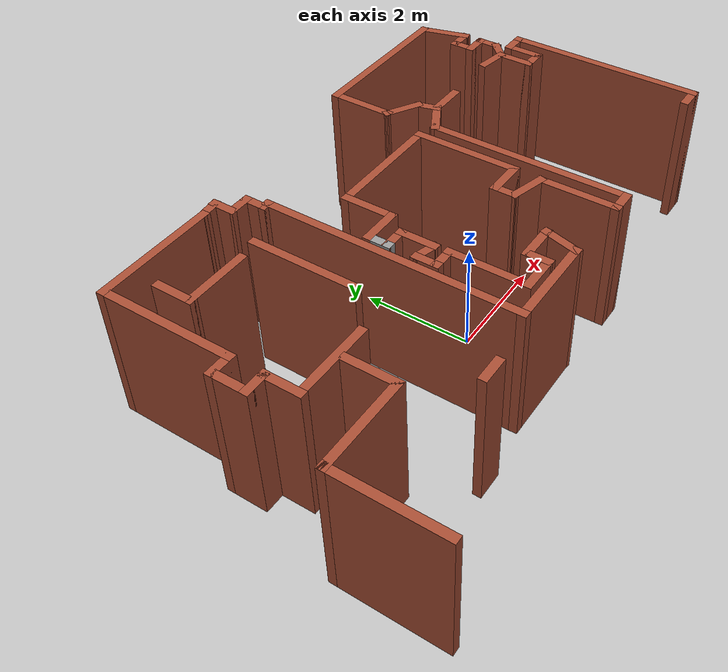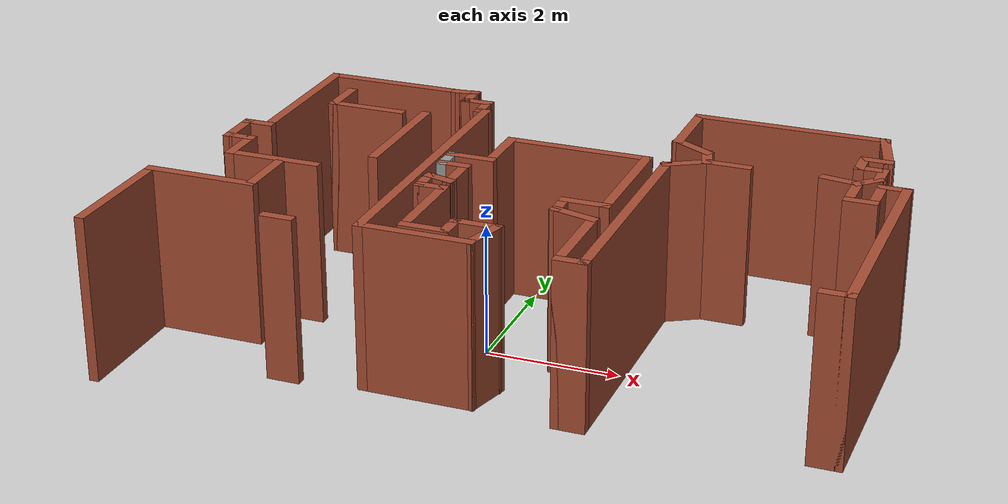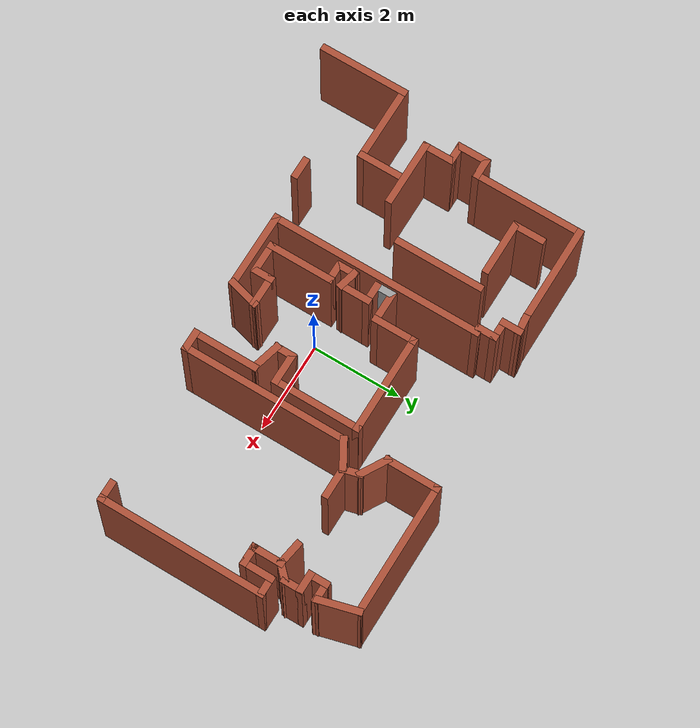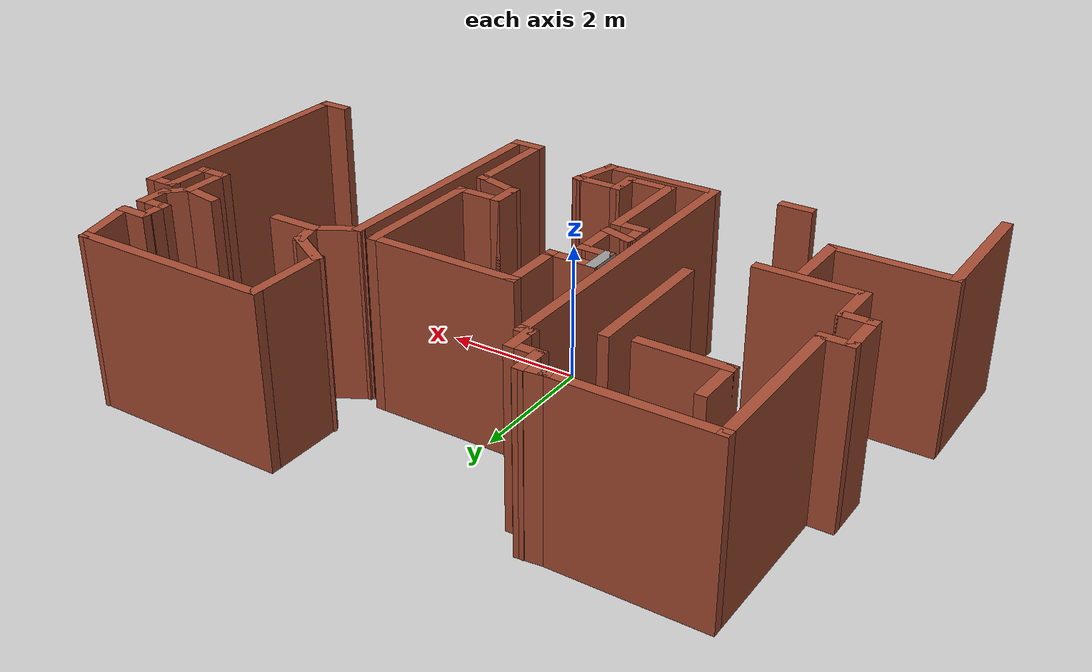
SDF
<sdf version="1.6">
 <model name="map_45">
  <pose>0.29683 -1.90359 0 0 -0 0</pose>
  <link name="Wall_0">
   <collision name="Wall_0_Collision">
    <geometry><box><size>2.25 0.15 2.5</size></box></geometry>
    <pose>0 0 1.25 0 -0 0</pose>
   </collision>
   <visual name="Wall_0_Visual">
    <pose>0 0 1.25 0 -0 0</pose>
    <geometry><box><size>2.25 0.15 2.5</size></box></geometry>
    <material>
     <script><uri>file://media/materials/scripts/gazebo.material</uri><name>Gazebo/Bricks</name></script>
     <ambient>1 1 1 1</ambient>
    </material>
    <meta><layer>0</layer></meta>
   </visual>
   <pose>-3.30096 5.5702 0 0 -0 3.14159</pose>
  </link>
  <link name="Wall_1">
   <collision name="Wall_1_Collision">
    <geometry><box><size>2.5 0.15 2.5</size></box></geometry>
    <pose>0 0 1.25 0 -0 0</pose>
   </collision>
   <visual name="Wall_1_Visual">
    <pose>0 0 1.25 0 -0 0</pose>
    <geometry><box><size>2.5 0.15 2.5</size></box></geometry>
    <material>
     <script><uri>file://media/materials/scripts/gazebo.material</uri><name>Gazebo/Bricks</name></script>
     <ambient>1 1 1 1</ambient>
    </material>
    <meta><layer>0</layer></meta>
   </visual>
   <pose>-4.35096 4.3952 0 0 -0 -1.5708</pose>
  </link>
  <link name="Wall_10">
   <collision name="Wall_10_Collision">
    <geometry><box><size>2 0.15 2.5</size></box></geometry>
    <pose>0 0 1.25 0 -0 0</pose>
   </collision>
   <visual name="Wall_10_Visual">
    <pose>0 0 1.25 0 -0 0</pose>
    <geometry><box><size>2 0.15 2.5</size></box></geometry>
    <material>
     <script><uri>file://media/materials/scripts/gazebo.material</uri><name>Gazebo/Bricks</name></script>
     <ambient>1 1 1 1</ambient>
    </material>
    <meta><layer>0</layer></meta>
   </visual>
   <pose>-5.12777 0.124368 0 0 -0 -1.5708</pose>
  </link>
  <link name="Wall_100">
   <collision name="Wall_100_Collision">
    <geometry><box><size>1 0.15 2.5</size></box></geometry>
    <pose>0 0 1.25 0 -0 0</pose>
   </collision>
   <visual name="Wall_100_Visual">
    <pose>0 0 1.25 0 -0 0</pose>
    <geometry><box><size>1 0.15 2.5</size></box></geometry>
    <material>
     <script><uri>file://media/materials/scripts/gazebo.material</uri><name>Gazebo/Bricks</name></script>
     <ambient>1 1 1 1</ambient>
    </material>
    <meta><layer>0</layer></meta>
   </visual>
   <pose>-0.702644 3.51805 0 0 -0 -1.5708</pose>
  </link>
  <link name="Wall_101">
   <collision name="Wall_101_Collision">
    <geometry><box><size>0.75 0.15 2.5</size></box></geometry>
    <pose>0 0 1.25 0 -0 0</pose>
   </collision>
   <visual name="Wall_101_Visual">
    <pose>0 0 1.25 0 -0 0</pose>
    <geometry><box><size>0.75 0.15 2.5</size></box></geometry>
    <material>
     <script><uri>file://media/materials/scripts/gazebo.material</uri><name>Gazebo/Bricks</name></script>
     <ambient>1 1 1 1</ambient>
    </material>
    <meta><layer>0</layer></meta>
   </visual>
   <pose>-1.00264 3.09305 0 0 -0 3.14159</pose>
  </link>
  <link name="Wall_102">
   <collision name="Wall_102_Collision">
    <geometry><box><size>0.5 0.15 2.5</size></box></geometry>
    <pose>0 0 1.25 0 -0 0</pose>
   </collision>
   <visual name="Wall_102_Visual">
    <pose>0 0 1.25 0 -0 0</pose>
    <geometry><box><size>0.5 0.15 2.5</size></box></geometry>
    <material>
     <script><uri>file://media/materials/scripts/gazebo.material</uri><name>Gazebo/Grey</name></script>
     <ambient>1 1 1 1</ambient>
    </material>
    <meta><layer>0</layer></meta>
   </visual>
   <pose>-1.30264 2.91805 0 0 -0 -1.5708</pose>
  </link>
  <link name="Wall_103">
   <collision name="Wall_103_Collision">
    <geometry><box><size>0.5 0.15 2.5</size></box></geometry>
    <pose>0 0 1.25 0 -0 0</pose>
   </collision>
   <visual name="Wall_103_Visual">
    <pose>0 0 1.25 0 -0 0</pose>
    <geometry><box><size>0.5 0.15 2.5</size></box></geometry>
    <material>
     <script><uri>file://media/materials/scripts/gazebo.material</uri><name>Gazebo/Bricks</name></script>
     <ambient>1 1 1 1</ambient>
    </material>
    <meta><layer>0</layer></meta>
   </visual>
   <pose>-1.12764 2.74305 0 0 -0 0</pose>
  </link>
  <link name="Wall_104">
   <collision name="Wall_104_Collision">
    <geometry><box><size>0.75 0.15 2.5</size></box></geometry>
    <pose>0 0 1.25 0 -0 0</pose>
   </collision>
   <visual name="Wall_104_Visual">
    <pose>0 0 1.25 0 -0 0</pose>
    <geometry><box><size>0.75 0.15 2.5</size></box></geometry>
    <material>
     <script><uri>file://media/materials/scripts/gazebo.material</uri><name>Gazebo/Bricks</name></script>
     <ambient>1 1 1 1</ambient>
    </material>
    <meta><layer>0</layer></meta>
   </visual>
   <pose>-0.952644 2.44305 0 0 -0 -1.5708</pose>
  </link>
  <link name="Wall_105">
   <collision name="Wall_105_Collision">
    <geometry><box><size>0.5 0.15 2.5</size></box></geometry>
    <pose>0 0 1.25 0 -0 0</pose>
   </collision>
   <visual name="Wall_105_Visual">
    <pose>0 0 1.25 0 -0 0</pose>
    <geometry><box><size>0.5 0.15 2.5</size></box></geometry>
    <material>
     <script><uri>file://media/materials/scripts/gazebo.material</uri><name>Gazebo/Bricks</name></script>
     <ambient>1 1 1 1</ambient>
    </material>
    <meta><layer>0</layer></meta>
   </visual>
   <pose>-1.12168 2.18834 0 0 -0 2.87979</pose>
  </link>
  <link name="Wall_106">
   <collision name="Wall_106_Collision">
    <geometry><box><size>0.5 0.15 2.5</size></box></geometry>
    <pose>0 0 1.25 0 -0 0</pose>
   </collision>
   <visual name="Wall_106_Visual">
    <pose>0 0 1.25 0 -0 0</pose>
    <geometry><box><size>0.5 0.15 2.5</size></box></geometry>
    <material>
     <script><uri>file://media/materials/scripts/gazebo.material</uri><name>Gazebo/Bricks</name></script>
     <ambient>1 1 1 1</ambient>
    </material>
    <meta><layer>0</layer></meta>
   </visual>
   <pose>-1.29072 2.05864 0 0 -0 -1.5708</pose>
  </link>
  <link name="Wall_107">
   <collision name="Wall_107_Collision">
    <geometry><box><size>0.5 0.15 2.5</size></box></geometry>
    <pose>0 0 1.25 0 -0 0</pose>
   </collision>
   <visual name="Wall_107_Visual">
    <pose>0 0 1.25 0 -0 0</pose>
    <geometry><box><size>0.5 0.15 2.5</size></box></geometry>
    <material>
     <script><uri>file://media/materials/scripts/gazebo.material</uri><name>Gazebo/Bricks</name></script>
     <ambient>1 1 1 1</ambient>
    </material>
    <meta><layer>0</layer></meta>
   </visual>
   <pose>-1.11572 1.88364 0 0 -0 0</pose>
  </link>
  <link name="Wall_108">
   <collision name="Wall_108_Collision">
    <geometry><box><size>1.5 0.15 2.5</size></box></geometry>
    <pose>0 0 1.25 0 -0 0</pose>
   </collision>
   <visual name="Wall_108_Visual">
    <pose>0 0 1.25 0 -0 0</pose>
    <geometry><box><size>1.5 0.15 2.5</size></box></geometry>
    <material>
     <script><uri>file://media/materials/scripts/gazebo.material</uri><name>Gazebo/Bricks</name></script>
     <ambient>1 1 1 1</ambient>
    </material>
    <meta><layer>0</layer></meta>
   </visual>
   <pose>-0.940718 1.20864 0 0 -0 -1.5708</pose>
  </link>
  <link name="Wall_109">
   <collision name="Wall_109_Collision">
    <geometry><box><size>0.75 0.15 2.5</size></box></geometry>
    <pose>0 0 1.25 0 -0 0</pose>
   </collision>
   <visual name="Wall_109_Visual">
    <pose>0 0 1.25 0 -0 0</pose>
    <geometry><box><size>0.75 0.15 2.5</size></box></geometry>
    <material>
     <script><uri>file://media/materials/scripts/gazebo.material</uri><name>Gazebo/Bricks</name></script>
     <ambient>1 1 1 1</ambient>
    </material>
    <meta><layer>0</layer></meta>
   </visual>
   <pose>-0.640718 0.533638 0 0 -0 0</pose>
  </link>
  <link name="Wall_110">
   <collision name="Wall_110_Collision">
    <geometry><box><size>0.5 0.15 2.5</size></box></geometry>
    <pose>0 0 1.25 0 -0 0</pose>
   </collision>
   <visual name="Wall_110_Visual">
    <pose>0 0 1.25 0 -0 0</pose>
    <geometry><box><size>0.5 0.15 2.5</size></box></geometry>
    <material>
     <script><uri>file://media/materials/scripts/gazebo.material</uri><name>Gazebo/Bricks</name></script>
     <ambient>1 1 1 1</ambient>
    </material>
    <meta><layer>0</layer></meta>
   </visual>
   <pose>-0.340718 0.708638 0 0 -0 1.5708</pose>
  </link>
  <link name="Wall_111">
   <collision name="Wall_111_Collision">
    <geometry><box><size>0.75 0.15 2.5</size></box></geometry>
    <pose>0 0 1.25 0 -0 0</pose>
   </collision>
   <visual name="Wall_111_Visual">
    <pose>0 0 1.25 0 -0 0</pose>
    <geometry><box><size>0.75 0.15 2.5</size></box></geometry>
    <material>
     <script><uri>file://media/materials/scripts/gazebo.material</uri><name>Gazebo/Bricks</name></script>
     <ambient>1 1 1 1</ambient>
    </material>
    <meta><layer>0</layer></meta>
   </visual>
   <pose>-0.040718 0.883638 0 0 -0 0</pose>
  </link>
  <link name="Wall_112">
   <collision name="Wall_112_Collision">
    <geometry><box><size>0.75 0.15 2.5</size></box></geometry>
    <pose>0 0 1.25 0 -0 0</pose>
   </collision>
   <visual name="Wall_112_Visual">
    <pose>0 0 1.25 0 -0 0</pose>
    <geometry><box><size>0.75 0.15 2.5</size></box></geometry>
    <material>
     <script><uri>file://media/materials/scripts/gazebo.material</uri><name>Gazebo/Bricks</name></script>
     <ambient>1 1 1 1</ambient>
    </material>
    <meta><layer>0</layer></meta>
   </visual>
   <pose>0.181636 0.593861 0 0 -0 -1.8326</pose>
  </link>
  <link name="Wall_113">
   <collision name="Wall_113_Collision">
    <geometry><box><size>1.75 0.15 2.5</size></box></geometry>
    <pose>0 0 1.25 0 -0 0</pose>
   </collision>
   <visual name="Wall_113_Visual">
    <pose>0 0 1.25 0 -0 0</pose>
    <geometry><box><size>1.75 0.15 2.5</size></box></geometry>
    <material>
     <script><uri>file://media/materials/scripts/gazebo.material</uri><name>Gazebo/Bricks</name></script>
     <ambient>1 1 1 1</ambient>
    </material>
    <meta><layer>0</layer></meta>
   </visual>
   <pose>-0.696009 0.304083 0 0 -0 3.14159</pose>
  </link>
  <link name="Wall_114">
   <collision name="Wall_114_Collision">
    <geometry><box><size>4.75 0.15 2.5</size></box></geometry>
    <pose>0 0 1.25 0 -0 0</pose>
   </collision>
   <visual name="Wall_114_Visual">
    <pose>0 0 1.25 0 -0 0</pose>
    <geometry><box><size>4.75 0.15 2.5</size></box></geometry>
    <material>
     <script><uri>file://media/materials/scripts/gazebo.material</uri><name>Gazebo/Bricks</name></script>
     <ambient>1 1 1 1</ambient>
    </material>
    <meta><layer>0</layer></meta>
   </visual>
   <pose>-1.49601 2.60408 0 0 -0 1.5708</pose>
  </link>
  <link name="Wall_115">
   <collision name="Wall_115_Collision">
    <geometry><box><size>0.25 0.15 2.5</size></box></geometry>
    <pose>0 0 1.25 0 -0 0</pose>
   </collision>
   <visual name="Wall_115_Visual">
    <pose>0 0 1.25 0 -0 0</pose>
    <geometry><box><size>0.25 0.15 2.5</size></box></geometry>
    <material>
     <script><uri>file://media/materials/scripts/gazebo.material</uri><name>Gazebo/Bricks</name></script>
     <ambient>1 1 1 1</ambient>
    </material>
    <meta><layer>0</layer></meta>
   </visual>
   <pose>-1.54601 4.90408 0 0 -0 3.14159</pose>
  </link>
  <link name="Wall_116">
   <collision name="Wall_116_Collision">
    <geometry><box><size>0.5 0.15 2.5</size></box></geometry>
    <pose>0 0 1.25 0 -0 0</pose>
   </collision>
   <visual name="Wall_116_Visual">
    <pose>0 0 1.25 0 -0 0</pose>
    <geometry><box><size>0.5 0.15 2.5</size></box></geometry>
    <material>
     <script><uri>file://media/materials/scripts/gazebo.material</uri><name>Gazebo/Bricks</name></script>
     <ambient>1 1 1 1</ambient>
    </material>
    <meta><layer>0</layer></meta>
   </visual>
   <pose>-1.59601 5.07908 0 0 -0 1.5708</pose>
  </link>
  <link name="Wall_117">
   <collision name="Wall_117_Collision">
    <geometry><box><size>0.5 0.15 2.5</size></box></geometry>
    <pose>0 0 1.25 0 -0 0</pose>
   </collision>
   <visual name="Wall_117_Visual">
    <pose>0 0 1.25 0 -0 0</pose>
    <geometry><box><size>0.5 0.15 2.5</size></box></geometry>
    <material>
     <script><uri>file://media/materials/scripts/gazebo.material</uri><name>Gazebo/Bricks</name></script>
     <ambient>1 1 1 1</ambient>
    </material>
    <meta><layer>0</layer></meta>
   </visual>
   <pose>-1.77101 5.25408 0 0 -0 3.14159</pose>
  </link>
  <link name="Wall_118">
   <collision name="Wall_118_Collision">
    <geometry><box><size>0.5 0.15 2.5</size></box></geometry>
    <pose>0 0 1.25 0 -0 0</pose>
   </collision>
   <visual name="Wall_118_Visual">
    <pose>0 0 1.25 0 -0 0</pose>
    <geometry><box><size>0.5 0.15 2.5</size></box></geometry>
    <material>
     <script><uri>file://media/materials/scripts/gazebo.material</uri><name>Gazebo/Bricks</name></script>
     <ambient>1 1 1 1</ambient>
    </material>
    <meta><layer>0</layer></meta>
   </visual>
   <pose>-1.94601 5.42908 0 0 -0 1.5708</pose>
  </link>
  <link name="Wall_119">
   <collision name="Wall_119_Collision">
    <geometry><box><size>0.456827 0.15 2.5</size></box></geometry>
    <pose>0 0 1.25 0 -0 0</pose>
   </collision>
   <visual name="Wall_119_Visual">
    <pose>0 0 1.25 0 -0 0</pose>
    <geometry><box><size>0.456827 0.15 2.5</size></box></geometry>
    <material>
     <script><uri>file://media/materials/scripts/gazebo.material</uri><name>Gazebo/Bricks</name></script>
     <ambient>1 1 1 1</ambient>
    </material>
    <meta><layer>0</layer></meta>
   </visual>
   <pose>-2.09848 5.58714 0 0 -0 -3.03092</pose>
  </link>
  <link name="Wall_121">
   <collision name="Wall_121_Collision">
    <geometry><box><size>0.75 0.15 2.5</size></box></geometry>
    <pose>0 0 1.25 0 -0 0</pose>
   </collision>
   <visual name="Wall_121_Visual">
    <pose>0 0 1.25 0 -0 0</pose>
    <geometry><box><size>0.75 0.15 2.5</size></box></geometry>
    <material>
     <script><uri>file://media/materials/scripts/gazebo.material</uri><name>Gazebo/Bricks</name></script>
     <ambient>1 1 1 1</ambient>
    </material>
    <meta><layer>0</layer></meta>
   </visual>
   <pose>-3.82037 4.71159 0 0 -0 -1.5708</pose>
  </link>
  <link name="Wall_122">
   <collision name="Wall_122_Collision">
    <geometry><box><size>1.25 0.15 2.5</size></box></geometry>
    <pose>0 0 1.25 0 -0 0</pose>
   </collision>
   <visual name="Wall_122_Visual">
    <pose>0 0 1.25 0 -0 0</pose>
    <geometry><box><size>1.25 0.15 2.5</size></box></geometry>
    <material>
     <script><uri>file://media/materials/scripts/gazebo.material</uri><name>Gazebo/Bricks</name></script>
     <ambient>1 1 1 1</ambient>
    </material>
    <meta><layer>0</layer></meta>
   </visual>
   <pose>-3.27037 4.41159 0 0 -0 0</pose>
  </link>
  <link name="Wall_124">
   <collision name="Wall_124_Collision">
    <geometry><box><size>2 0.15 2.5</size></box></geometry>
    <pose>0 0 1.25 0 -0 0</pose>
   </collision>
   <visual name="Wall_124_Visual">
    <pose>0 0 1.25 0 -0 0</pose>
    <geometry><box><size>2 0.15 2.5</size></box></geometry>
    <material>
     <script><uri>file://media/materials/scripts/gazebo.material</uri><name>Gazebo/Bricks</name></script>
     <ambient>1 1 1 1</ambient>
    </material>
    <meta><layer>0</layer></meta>
   </visual>
   <pose>-2.33076 3.55459 0 0 -0 -1.5708</pose>
  </link>
  <link name="Wall_126">
   <collision name="Wall_126_Collision">
    <geometry><box><size>0.75 0.15 2.5</size></box></geometry>
    <pose>0 0 1.25 0 -0 0</pose>
   </collision>
   <visual name="Wall_126_Visual">
    <pose>0 0 1.25 0 -0 0</pose>
    <geometry><box><size>0.75 0.15 2.5</size></box></geometry>
    <material>
     <script><uri>file://media/materials/scripts/gazebo.material</uri><name>Gazebo/Bricks</name></script>
     <ambient>1 1 1 1</ambient>
    </material>
    <meta><layer>0</layer></meta>
   </visual>
   <pose>2.54653 4.13776 0 0 -0 0</pose>
  </link>
  <link name="Wall_128">
   <collision name="Wall_128_Collision">
    <geometry><box><size>0.641843 0.15 2.5</size></box></geometry>
    <pose>0 0 1.25 0 -0 0</pose>
   </collision>
   <visual name="Wall_128_Visual">
    <pose>0 0 1.25 0 -0 0</pose>
    <geometry><box><size>0.641843 0.15 2.5</size></box></geometry>
    <material>
     <script><uri>file://media/materials/scripts/gazebo.material</uri><name>Gazebo/Bricks</name></script>
     <ambient>1 1 1 1</ambient>
    </material>
    <meta><layer>0</layer></meta>
   </visual>
   <pose>4.21616 4.14715 0 0 -0 -0.162711</pose>
  </link>
  <link name="Wall_2">
   <collision name="Wall_2_Collision">
    <geometry><box><size>0.5 0.15 2.5</size></box></geometry>
    <pose>0 0 1.25 0 -0 0</pose>
   </collision>
   <visual name="Wall_2_Visual">
    <pose>0 0 1.25 0 -0 0</pose>
    <geometry><box><size>0.5 0.15 2.5</size></box></geometry>
    <material>
     <script><uri>file://media/materials/scripts/gazebo.material</uri><name>Gazebo/Bricks</name></script>
     <ambient>1 1 1 1</ambient>
    </material>
    <meta><layer>0</layer></meta>
   </visual>
   <pose>-4.52596 3.2202 0 0 -0 3.14159</pose>
  </link>
  <link name="Wall_21">
   <collision name="Wall_21_Collision">
    <geometry><box><size>0.5 0.15 2.5</size></box></geometry>
    <pose>0 0 1.25 0 -0 0</pose>
   </collision>
   <visual name="Wall_21_Visual">
    <pose>0 0 1.25 0 -0 0</pose>
    <geometry><box><size>0.5 0.15 2.5</size></box></geometry>
    <material>
     <script><uri>file://media/materials/scripts/gazebo.material</uri><name>Gazebo/Bricks</name></script>
     <ambient>1 1 1 1</ambient>
    </material>
    <meta><layer>0</layer></meta>
   </visual>
   <pose>-2.65173 0.150409 0 0 -0 0</pose>
  </link>
  <link name="Wall_3">
   <collision name="Wall_3_Collision">
    <geometry><box><size>0.75 0.15 2.5</size></box></geometry>
    <pose>0 0 1.25 0 -0 0</pose>
   </collision>
   <visual name="Wall_3_Visual">
    <pose>0 0 1.25 0 -0 0</pose>
    <geometry><box><size>0.75 0.15 2.5</size></box></geometry>
    <material>
     <script><uri>file://media/materials/scripts/gazebo.material</uri><name>Gazebo/Bricks</name></script>
     <ambient>1 1 1 1</ambient>
    </material>
    <meta><layer>0</layer></meta>
   </visual>
   <pose>-4.70096 2.9202 0 0 -0 -1.5708</pose>
  </link>
  <link name="Wall_4">
   <collision name="Wall_4_Collision">
    <geometry><box><size>0.5 0.15 2.5</size></box></geometry>
    <pose>0 0 1.25 0 -0 0</pose>
   </collision>
   <visual name="Wall_4_Visual">
    <pose>0 0 1.25 0 -0 0</pose>
    <geometry><box><size>0.5 0.15 2.5</size></box></geometry>
    <material>
     <script><uri>file://media/materials/scripts/gazebo.material</uri><name>Gazebo/Bricks</name></script>
     <ambient>1 1 1 1</ambient>
    </material>
    <meta><layer>0</layer></meta>
   </visual>
   <pose>-4.52596 2.6202 0 0 -0 0</pose>
  </link>
  <link name="Wall_5">
   <collision name="Wall_5_Collision">
    <geometry><box><size>0.75 0.15 2.5</size></box></geometry>
    <pose>0 0 1.25 0 -0 0</pose>
   </collision>
   <visual name="Wall_5_Visual">
    <pose>0 0 1.25 0 -0 0</pose>
    <geometry><box><size>0.75 0.15 2.5</size></box></geometry>
    <material>
     <script><uri>file://media/materials/scripts/gazebo.material</uri><name>Gazebo/Bricks</name></script>
     <ambient>1 1 1 1</ambient>
    </material>
    <meta><layer>0</layer></meta>
   </visual>
   <pose>-4.35096 2.3202 0 0 -0 -1.5708</pose>
  </link>
  <link name="Wall_6">
   <collision name="Wall_6_Collision">
    <geometry><box><size>1.5 0.15 2.5</size></box></geometry>
    <pose>0 0 1.25 0 -0 0</pose>
   </collision>
   <visual name="Wall_6_Visual">
    <pose>0 0 1.25 0 -0 0</pose>
    <geometry><box><size>1.5 0.15 2.5</size></box></geometry>
    <material>
     <script><uri>file://media/materials/scripts/gazebo.material</uri><name>Gazebo/Bricks</name></script>
     <ambient>1 1 1 1</ambient>
    </material>
    <meta><layer>0</layer></meta>
   </visual>
   <pose>-3.67596 2.0202 0 0 -0 0</pose>
  </link>
  <link name="Wall_73">
   <collision name="Wall_73_Collision">
    <geometry><box><size>0.5 0.15 2.5</size></box></geometry>
    <pose>0 0 1.25 0 -0 0</pose>
   </collision>
   <visual name="Wall_73_Visual">
    <pose>0 0 1.25 0 -0 0</pose>
    <geometry><box><size>0.5 0.15 2.5</size></box></geometry>
    <material>
     <script><uri>file://media/materials/scripts/gazebo.material</uri><name>Gazebo/Bricks</name></script>
     <ambient>1 1 1 1</ambient>
    </material>
    <meta><layer>0</layer></meta>
   </visual>
   <pose>4.98383 0.50731 0 0 -0 0</pose>
  </link>
  <link name="Wall_74">
   <collision name="Wall_74_Collision">
    <geometry><box><size>3.75 0.15 2.5</size></box></geometry>
    <pose>0 0 1.25 0 -0 0</pose>
   </collision>
   <visual name="Wall_74_Visual">
    <pose>0 0 1.25 0 -0 0</pose>
    <geometry><box><size>3.75 0.15 2.5</size></box></geometry>
    <material>
     <script><uri>file://media/materials/scripts/gazebo.material</uri><name>Gazebo/Bricks</name></script>
     <ambient>1 1 1 1</ambient>
    </material>
    <meta><layer>0</layer></meta>
   </visual>
   <pose>5.15883 2.30731 0 0 -0 1.5708</pose>
  </link>
  <link name="Wall_75">
   <collision name="Wall_75_Collision">
    <geometry><box><size>0.5 0.15 2.5</size></box></geometry>
    <pose>0 0 1.25 0 -0 0</pose>
   </collision>
   <visual name="Wall_75_Visual">
    <pose>0 0 1.25 0 -0 0</pose>
    <geometry><box><size>0.5 0.15 2.5</size></box></geometry>
    <material>
     <script><uri>file://media/materials/scripts/gazebo.material</uri><name>Gazebo/Bricks</name></script>
     <ambient>1 1 1 1</ambient>
    </material>
    <meta><layer>0</layer></meta>
   </visual>
   <pose>4.98383 4.10731 0 0 -0 3.14159</pose>
  </link>
  <link name="Wall_76">
   <collision name="Wall_76_Collision">
    <geometry><box><size>0.75 0.15 2.5</size></box></geometry>
    <pose>0 0 1.25 0 -0 0</pose>
   </collision>
   <visual name="Wall_76_Visual">
    <pose>0 0 1.25 0 -0 0</pose>
    <geometry><box><size>0.75 0.15 2.5</size></box></geometry>
    <material>
     <script><uri>file://media/materials/scripts/gazebo.material</uri><name>Gazebo/Bricks</name></script>
     <ambient>1 1 1 1</ambient>
    </material>
    <meta><layer>0</layer></meta>
   </visual>
   <pose>4.80883 3.80731 0 0 -0 -1.5708</pose>
  </link>
  <link name="Wall_77">
   <collision name="Wall_77_Collision">
    <geometry><box><size>0.5 0.15 2.5</size></box></geometry>
    <pose>0 0 1.25 0 -0 0</pose>
   </collision>
   <visual name="Wall_77_Visual">
    <pose>0 0 1.25 0 -0 0</pose>
    <geometry><box><size>0.5 0.15 2.5</size></box></geometry>
    <material>
     <script><uri>file://media/materials/scripts/gazebo.material</uri><name>Gazebo/Bricks</name></script>
     <ambient>1 1 1 1</ambient>
    </material>
    <meta><layer>0</layer></meta>
   </visual>
   <pose>4.63383 3.50731 0 0 -0 3.14159</pose>
  </link>
  <link name="Wall_78">
   <collision name="Wall_78_Collision">
    <geometry><box><size>0.75 0.15 2.5</size></box></geometry>
    <pose>0 0 1.25 0 -0 0</pose>
   </collision>
   <visual name="Wall_78_Visual">
    <pose>0 0 1.25 0 -0 0</pose>
    <geometry><box><size>0.75 0.15 2.5</size></box></geometry>
    <material>
     <script><uri>file://media/materials/scripts/gazebo.material</uri><name>Gazebo/Bricks</name></script>
     <ambient>1 1 1 1</ambient>
    </material>
    <meta><layer>0</layer></meta>
   </visual>
   <pose>4.45883 3.80731 0 0 -0 1.5708</pose>
  </link>
  <link name="Wall_79">
   <collision name="Wall_79_Collision">
    <geometry><box><size>0.5 0.15 2.5</size></box></geometry>
    <pose>0 0 1.25 0 -0 0</pose>
   </collision>
   <visual name="Wall_79_Visual">
    <pose>0 0 1.25 0 -0 0</pose>
    <geometry><box><size>0.5 0.15 2.5</size></box></geometry>
    <material>
     <script><uri>file://media/materials/scripts/gazebo.material</uri><name>Gazebo/Bricks</name></script>
     <ambient>1 1 1 1</ambient>
    </material>
    <meta><layer>0</layer></meta>
   </visual>
   <pose>4.58258 4.23105 0 0 -0 0.785398</pose>
  </link>
  <link name="Wall_8">
   <collision name="Wall_8_Collision">
    <geometry><box><size>1 0.15 2.5</size></box></geometry>
    <pose>0 0 1.25 0 -0 0</pose>
   </collision>
   <visual name="Wall_8_Visual">
    <pose>0 0 1.25 0 -0 0</pose>
    <geometry><box><size>1 0.15 2.5</size></box></geometry>
    <material>
     <script><uri>file://media/materials/scripts/gazebo.material</uri><name>Gazebo/Bricks</name></script>
     <ambient>1 1 1 1</ambient>
    </material>
    <meta><layer>0</layer></meta>
   </visual>
   <pose>-3.52777 1.47437 0 0 -0 -1.5708</pose>
  </link>
  <link name="Wall_80">
   <collision name="Wall_80_Collision">
    <geometry><box><size>0.5 0.15 2.5</size></box></geometry>
    <pose>0 0 1.25 0 -0 0</pose>
   </collision>
   <visual name="Wall_80_Visual">
    <pose>0 0 1.25 0 -0 0</pose>
    <geometry><box><size>0.5 0.15 2.5</size></box></geometry>
    <material>
     <script><uri>file://media/materials/scripts/gazebo.material</uri><name>Gazebo/Bricks</name></script>
     <ambient>1 1 1 1</ambient>
    </material>
    <meta><layer>0</layer></meta>
   </visual>
   <pose>4.70632 4.5298 0 0 -0 1.5708</pose>
  </link>
  <link name="Wall_81">
   <collision name="Wall_81_Collision">
    <geometry><box><size>0.5 0.15 2.5</size></box></geometry>
    <pose>0 0 1.25 0 -0 0</pose>
   </collision>
   <visual name="Wall_81_Visual">
    <pose>0 0 1.25 0 -0 0</pose>
    <geometry><box><size>0.5 0.15 2.5</size></box></geometry>
    <material>
     <script><uri>file://media/materials/scripts/gazebo.material</uri><name>Gazebo/Bricks</name></script>
     <ambient>1 1 1 1</ambient>
    </material>
    <meta><layer>0</layer></meta>
   </visual>
   <pose>4.53132 4.7048 0 0 -0 3.14159</pose>
  </link>
  <link name="Wall_82">
   <collision name="Wall_82_Collision">
    <geometry><box><size>0.5 0.15 2.5</size></box></geometry>
    <pose>0 0 1.25 0 -0 0</pose>
   </collision>
   <visual name="Wall_82_Visual">
    <pose>0 0 1.25 0 -0 0</pose>
    <geometry><box><size>0.5 0.15 2.5</size></box></geometry>
    <material>
     <script><uri>file://media/materials/scripts/gazebo.material</uri><name>Gazebo/Bricks</name></script>
     <ambient>1 1 1 1</ambient>
    </material>
    <meta><layer>0</layer></meta>
   </visual>
   <pose>4.35632 4.8798 0 0 -0 1.5708</pose>
  </link>
  <link name="Wall_83">
   <collision name="Wall_83_Collision">
    <geometry><box><size>0.5 0.15 2.5</size></box></geometry>
    <pose>0 0 1.25 0 -0 0</pose>
   </collision>
   <visual name="Wall_83_Visual">
    <pose>0 0 1.25 0 -0 0</pose>
    <geometry><box><size>0.5 0.15 2.5</size></box></geometry>
    <material>
     <script><uri>file://media/materials/scripts/gazebo.material</uri><name>Gazebo/Bricks</name></script>
     <ambient>1 1 1 1</ambient>
    </material>
    <meta><layer>0</layer></meta>
   </visual>
   <pose>4.53132 5.0548 0 0 -0 0</pose>
  </link>
  <link name="Wall_86">
   <collision name="Wall_86_Collision">
    <geometry><box><size>1 0.15 2.5</size></box></geometry>
    <pose>0 0 1.25 0 -0 0</pose>
   </collision>
   <visual name="Wall_86_Visual">
    <pose>0 0 1.25 0 -0 0</pose>
    <geometry><box><size>1 0.15 2.5</size></box></geometry>
    <material>
     <script><uri>file://media/materials/scripts/gazebo.material</uri><name>Gazebo/Bricks</name></script>
     <ambient>1 1 1 1</ambient>
    </material>
    <meta><layer>0</layer></meta>
   </visual>
   <pose>4.59632 5.46532 0 0 -0 1.8326</pose>
  </link>
  <link name="Wall_87">
   <collision name="Wall_87_Collision">
    <geometry><box><size>3 0.15 2.5</size></box></geometry>
    <pose>0 0 1.25 0 -0 0</pose>
   </collision>
   <visual name="Wall_87_Visual">
    <pose>0 0 1.25 0 -0 0</pose>
    <geometry><box><size>3 0.15 2.5</size></box></geometry>
    <material>
     <script><uri>file://media/materials/scripts/gazebo.material</uri><name>Gazebo/Bricks</name></script>
     <ambient>1 1 1 1</ambient>
    </material>
    <meta><layer>0</layer></meta>
   </visual>
   <pose>3.06133 5.87583 0 0 -0 3.14159</pose>
  </link>
  <link name="Wall_88">
   <collision name="Wall_88_Collision">
    <geometry><box><size>1.25 0.15 2.5</size></box></geometry>
    <pose>0 0 1.25 0 -0 0</pose>
   </collision>
   <visual name="Wall_88_Visual">
    <pose>0 0 1.25 0 -0 0</pose>
    <geometry><box><size>1.25 0.15 2.5</size></box></geometry>
    <material>
     <script><uri>file://media/materials/scripts/gazebo.material</uri><name>Gazebo/Bricks</name></script>
     <ambient>1 1 1 1</ambient>
    </material>
    <meta><layer>0</layer></meta>
   </visual>
   <pose>1.63633 5.32583 0 0 -0 -1.5708</pose>
  </link>
  <link name="Wall_89">
   <collision name="Wall_89_Collision">
    <geometry><box><size>0.75 0.15 2.5</size></box></geometry>
    <pose>0 0 1.25 0 -0 0</pose>
   </collision>
   <visual name="Wall_89_Visual">
    <pose>0 0 1.25 0 -0 0</pose>
    <geometry><box><size>0.75 0.15 2.5</size></box></geometry>
    <material>
     <script><uri>file://media/materials/scripts/gazebo.material</uri><name>Gazebo/Bricks</name></script>
     <ambient>1 1 1 1</ambient>
    </material>
    <meta><layer>0</layer></meta>
   </visual>
   <pose>1.89613 4.62583 0 0 -0 -0.523599</pose>
  </link>
  <link name="Wall_9">
   <collision name="Wall_9_Collision">
    <geometry><box><size>1.75 0.15 2.5</size></box></geometry>
    <pose>0 0 1.25 0 -0 0</pose>
   </collision>
   <visual name="Wall_9_Visual">
    <pose>0 0 1.25 0 -0 0</pose>
    <geometry><box><size>1.75 0.15 2.5</size></box></geometry>
    <material>
     <script><uri>file://media/materials/scripts/gazebo.material</uri><name>Gazebo/Bricks</name></script>
     <ambient>1 1 1 1</ambient>
    </material>
    <meta><layer>0</layer></meta>
   </visual>
   <pose>-4.32777 1.04937 0 0 -0 3.14159</pose>
  </link>
  <link name="Wall_90">
   <collision name="Wall_90_Collision">
    <geometry><box><size>0.5 0.15 2.5</size></box></geometry>
    <pose>0 0 1.25 0 -0 0</pose>
   </collision>
   <visual name="Wall_90_Visual">
    <pose>0 0 1.25 0 -0 0</pose>
    <geometry><box><size>0.5 0.15 2.5</size></box></geometry>
    <material>
     <script><uri>file://media/materials/scripts/gazebo.material</uri><name>Gazebo/Bricks</name></script>
     <ambient>1 1 1 1</ambient>
    </material>
    <meta><layer>0</layer></meta>
   </visual>
   <pose>2.20123 4.3068 0 0 -0 -1.309</pose>
  </link>
  <link name="Wall_91">
   <collision name="Wall_91_Collision">
    <geometry><box><size>0.75 0.15 2.5</size></box></geometry>
    <pose>0 0 1.25 0 -0 0</pose>
   </collision>
   <visual name="Wall_91_Visual">
    <pose>0 0 1.25 0 -0 0</pose>
    <geometry><box><size>0.75 0.15 2.5</size></box></geometry>
    <material>
     <script><uri>file://media/materials/scripts/gazebo.material</uri><name>Gazebo/Bricks</name></script>
     <ambient>1 1 1 1</ambient>
    </material>
    <meta><layer>0</layer></meta>
   </visual>
   <pose>1.98672 3.98776 0 0 -0 -2.61799</pose>
  </link>
  <link name="Wall_92">
   <collision name="Wall_92_Collision">
    <geometry><box><size>3.75 0.15 2.5</size></box></geometry>
    <pose>0 0 1.25 0 -0 0</pose>
   </collision>
   <visual name="Wall_92_Visual">
    <pose>0 0 1.25 0 -0 0</pose>
    <geometry><box><size>3.75 0.15 2.5</size></box></geometry>
    <material>
     <script><uri>file://media/materials/scripts/gazebo.material</uri><name>Gazebo/Bricks</name></script>
     <ambient>1 1 1 1</ambient>
    </material>
    <meta><layer>0</layer></meta>
   </visual>
   <pose>1.72691 2.03776 0 0 -0 -1.5708</pose>
  </link>
  <link name="Wall_93">
   <collision name="Wall_93_Collision">
    <geometry><box><size>0.5 0.15 2.5</size></box></geometry>
    <pose>0 0 1.25 0 -0 0</pose>
   </collision>
   <visual name="Wall_93_Visual">
    <pose>0 0 1.25 0 -0 0</pose>
    <geometry><box><size>0.5 0.15 2.5</size></box></geometry>
    <material>
     <script><uri>file://media/materials/scripts/gazebo.material</uri><name>Gazebo/Bricks</name></script>
     <ambient>1 1 1 1</ambient>
    </material>
    <meta><layer>0</layer></meta>
   </visual>
   <pose>1.55191 0.23776 0 0 -0 3.14159</pose>
  </link>
  <link name="Wall_94">
   <collision name="Wall_94_Collision">
    <geometry><box><size>1.5 0.15 2.5</size></box></geometry>
    <pose>0 0 1.25 0 -0 0</pose>
   </collision>
   <visual name="Wall_94_Visual">
    <pose>0 0 1.25 0 -0 0</pose>
    <geometry><box><size>1.5 0.15 2.5</size></box></geometry>
    <material>
     <script><uri>file://media/materials/scripts/gazebo.material</uri><name>Gazebo/Bricks</name></script>
     <ambient>1 1 1 1</ambient>
    </material>
    <meta><layer>0</layer></meta>
   </visual>
   <pose>1.37691 0.91276 0 0 -0 1.5708</pose>
  </link>
  <link name="Wall_95">
   <collision name="Wall_95_Collision">
    <geometry><box><size>0.75 0.15 2.5</size></box></geometry>
    <pose>0 0 1.25 0 -0 0</pose>
   </collision>
   <visual name="Wall_95_Visual">
    <pose>0 0 1.25 0 -0 0</pose>
    <geometry><box><size>0.75 0.15 2.5</size></box></geometry>
    <material>
     <script><uri>file://media/materials/scripts/gazebo.material</uri><name>Gazebo/Bricks</name></script>
     <ambient>1 1 1 1</ambient>
    </material>
    <meta><layer>0</layer></meta>
   </visual>
   <pose>1.08713 1.66541 0 0 -0 2.87979</pose>
  </link>
  <link name="Wall_96">
   <collision name="Wall_96_Collision">
    <geometry><box><size>0.5 0.15 2.5</size></box></geometry>
    <pose>0 0 1.25 0 -0 0</pose>
   </collision>
   <visual name="Wall_96_Visual">
    <pose>0 0 1.25 0 -0 0</pose>
    <geometry><box><size>0.5 0.15 2.5</size></box></geometry>
    <material>
     <script><uri>file://media/materials/scripts/gazebo.material</uri><name>Gazebo/Bricks</name></script>
     <ambient>1 1 1 1</ambient>
    </material>
    <meta><layer>0</layer></meta>
   </visual>
   <pose>0.797356 1.91805 0 0 -0 1.5708</pose>
  </link>
  <link name="Wall_97">
   <collision name="Wall_97_Collision">
    <geometry><box><size>0.75 0.15 2.5</size></box></geometry>
    <pose>0 0 1.25 0 -0 0</pose>
   </collision>
   <visual name="Wall_97_Visual">
    <pose>0 0 1.25 0 -0 0</pose>
    <geometry><box><size>0.75 0.15 2.5</size></box></geometry>
    <material>
     <script><uri>file://media/materials/scripts/gazebo.material</uri><name>Gazebo/Bricks</name></script>
     <ambient>1 1 1 1</ambient>
    </material>
    <meta><layer>0</layer></meta>
   </visual>
   <pose>1.09736 2.09305 0 0 -0 0</pose>
  </link>
  <link name="Wall_98">
   <collision name="Wall_98_Collision">
    <geometry><box><size>2 0.15 2.5</size></box></geometry>
    <pose>0 0 1.25 0 -0 0</pose>
   </collision>
   <visual name="Wall_98_Visual">
    <pose>0 0 1.25 0 -0 0</pose>
    <geometry><box><size>2 0.15 2.5</size></box></geometry>
    <material>
     <script><uri>file://media/materials/scripts/gazebo.material</uri><name>Gazebo/Bricks</name></script>
     <ambient>1 1 1 1</ambient>
    </material>
    <meta><layer>0</layer></meta>
   </visual>
   <pose>1.39736 3.01805 0 0 -0 1.5708</pose>
  </link>
  <link name="Wall_99">
   <collision name="Wall_99_Collision">
    <geometry><box><size>2.25 0.15 2.5</size></box></geometry>
    <pose>0 0 1.25 0 -0 0</pose>
   </collision>
   <visual name="Wall_99_Visual">
    <pose>0 0 1.25 0 -0 0</pose>
    <geometry><box><size>2.25 0.15 2.5</size></box></geometry>
    <material>
     <script><uri>file://media/materials/scripts/gazebo.material</uri><name>Gazebo/Bricks</name></script>
     <ambient>1 1 1 1</ambient>
    </material>
    <meta><layer>0</layer></meta>
   </visual>
   <pose>0.347356 3.94305 0 0 -0 3.14159</pose>
  </link>
  <static>1</static>
 </model>
</sdf>
